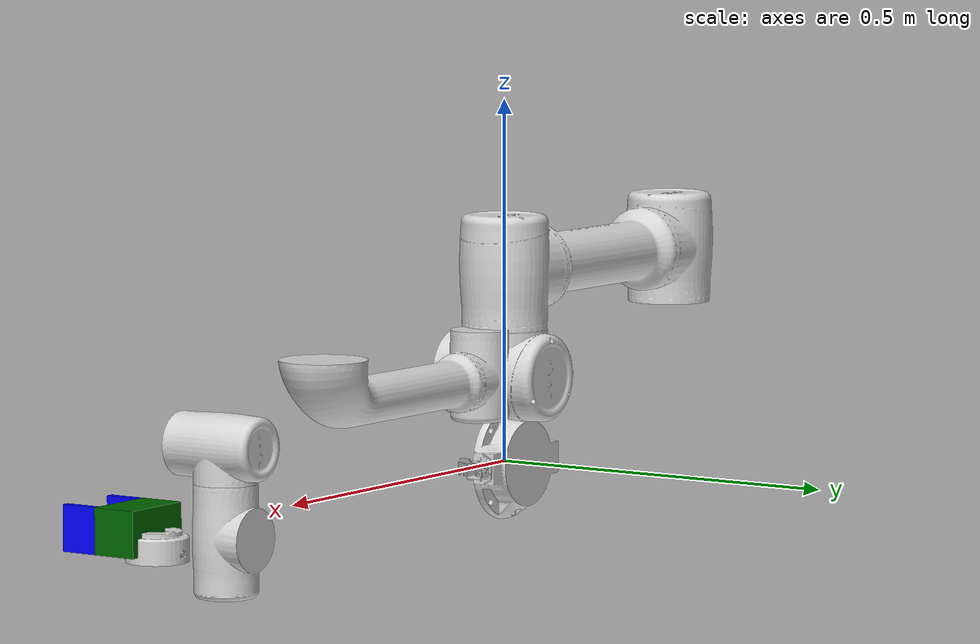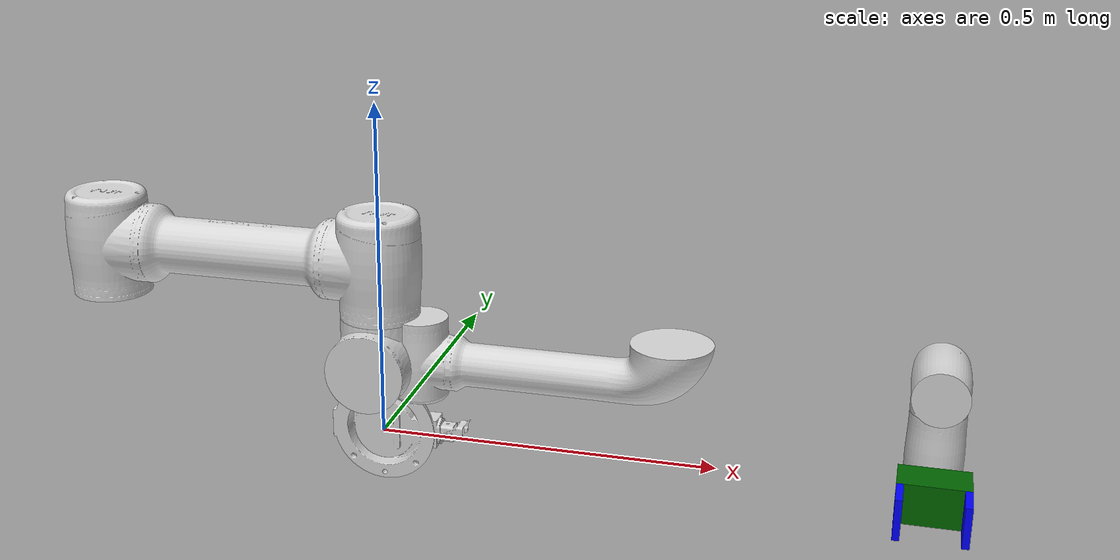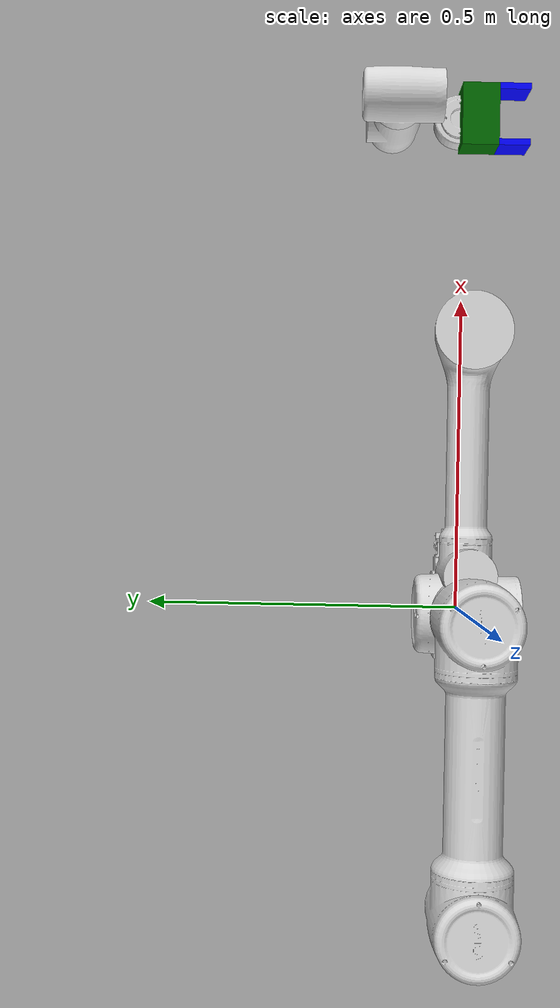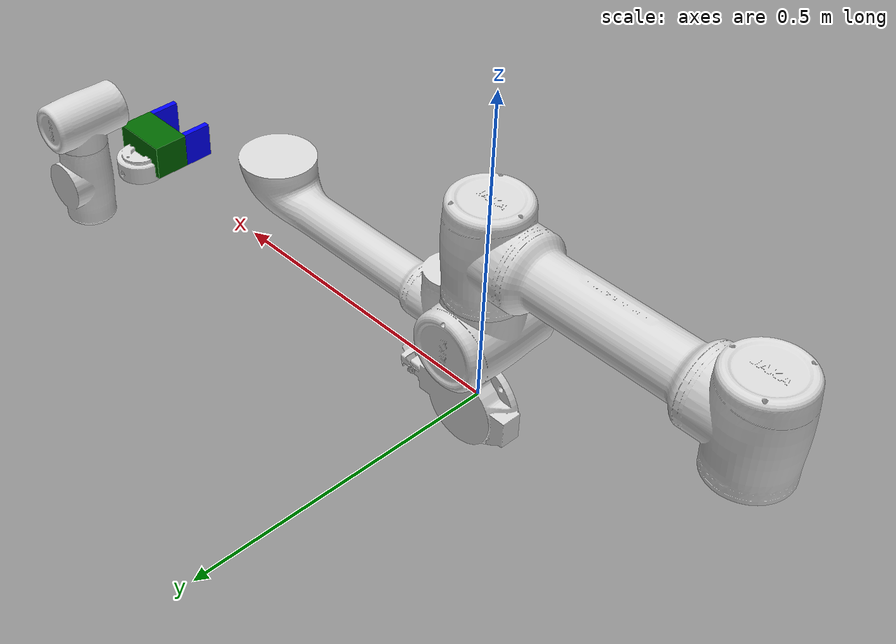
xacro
<?xml version="1.0"?>
<robot xmlns:xacro="http://www.ros.org/wiki/xacro" name="jaka_robot">
    <xacro:arg name="initial_positions_file" default="initial_positions.yaml" />
    <xacro:arg name="use_gazebo" default="false"/>
    <xacro:arg name="use_rviz_sim" default="false"/>

    <!-- Import jaka_robot urdf file -->
    <xacro:include filename="$(find jaka_description)/urdf/my_robot.urdf.xacro" />

    <!-- Import control_xacro -->
    <xacro:include filename="jaka_robot.ros2_control.xacro" />

     <xacro:jaka_zu5_ros2_control name="jaka_zu5_hardware" initial_positions_file="$(arg initial_positions_file)" use_gazebo="$(arg use_gazebo)" use_rviz_sim="$(arg use_rviz_sim)" />

</robot>

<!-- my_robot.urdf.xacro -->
<!-- Main robot URDF file that combines all robot components -->
<robot name="jaka_zu5" xmlns:xacro="http://www.ros.org/wiki/xacro">

  <xacro:property name="PI" value="3.14159274"/>

  <!-- Include robot arm definition -->
  <xacro:include filename="$(find jaka_description)/urdf/jaka_zu5.xacro" />

  <!-- Include gripper definition if needed -->
  <xacro:include filename="$(find jaka_description)/urdf/gripper.xacro" />

  <!-- 添加传动配置 -->
  <xacro:include filename="$(find jaka_description)/urdf/jaka_zu5.gazebo" />

  <!-- World link for ground truth -->
  <link name="world" />

  <!-- Fix robot arm to world coordinate system -->
  <joint name="world_joint" type="fixed">
    <parent link="world" />
    <child link="Link_0" />
    <origin xyz="0 0 0" rpy="0 0 0" />
  </joint>

</robot>

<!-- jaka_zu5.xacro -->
<robot name="jaka_zu5_arm" xmlns:xacro="http://www.ros.org/wiki/xacro">

  <!-- LINK -->

  <link
    name="Link_0">
    <inertial>
      <origin
        xyz="0.00096371 8.8222E-08 0.019555"
        rpy="0 0 0" />
      <mass
        value="4.0392" />
      <inertia
        ixx="0.0048763"
        ixy="-1.8056E-07"
        ixz="2.5196E-05"
        iyy="0.0068003"
        iyz="-1.7678E-09"
        izz="0.010618" />
    </inertial>
    <visual>
      <origin
        xyz="0 0 0"
        rpy="0 0 0" />
      <geometry>
        <mesh
          filename="package://jaka_description/meshes/jaka_zu5_meshes/Link_0.STL" />
      </geometry>
      <material
        name="">
        <color
          rgba="0.84706 0.84706 0.84706 1" />
      </material>
    </visual>
    <collision>
      <origin
        xyz="0 0 0"
        rpy="0 0 0" />
      <geometry>
        <mesh
          filename="package://jaka_description/meshes/jaka_zu5_meshes/Link_0.STL" />
      </geometry>
    </collision>
  </link>
  <link
    name="Link_1">
    <inertial>
      <origin
        xyz="-2.5186E-07 0.0033226 -0.001509"
        rpy="0 0 0" />
      <mass
        value="15.135" />
      <inertia
        ixx="0.044302"
        ixy="1.5349E-07"
        ixz="-6.1966E-07"
        iyy="0.043091"
        iyz="1.4326E-05"
        izz="0.030523" />
    </inertial>
    <visual>
      <origin
        xyz="0 0 0"
        rpy="0 0 0" />
      <geometry>
        <mesh
          filename="package://jaka_description/meshes/jaka_zu5_meshes/Link_1.STL" />
      </geometry>
      <material
        name="">
        <color
          rgba="0.84706 0.84706 0.84706 1" />
      </material>
    </visual>
    <collision>
      <origin
        xyz="0 0 0"
        rpy="0 0 0" />
      <geometry>
        <mesh
          filename="package://jaka_description/meshes/jaka_zu5_meshes/Link_1.STL" />
      </geometry>
    </collision>
  </link>

  <link
    name="Link_2">
    <inertial>
      <origin
        xyz="0.215 6.4325E-09 -0.14315"
        rpy="0 0 0" />
      <mass
        value="45.847" />
      <inertia
        ixx="0.10377"
        ixy="-1.3562E-06"
        ixz="2.544E-07"
        iyy="1.5964"
        iyz="2.1509E-08"
        izz="1.5689" />
    </inertial>
    <visual>
      <origin
        xyz="0 0 0"
        rpy="0 0 0" />
      <geometry>
        <mesh
          filename="package://jaka_description/meshes/jaka_zu5_meshes/Link_2.STL" />
      </geometry>
      <material
        name="">
        <color
          rgba="0.84706 0.84706 0.84706 1" />
      </material>
    </visual>
    <collision>
      <origin
        xyz="0 0 0"
        rpy="0 0 0" />
      <geometry>
        <mesh
          filename="package://jaka_description/meshes/jaka_zu5_meshes/Link_2.STL" />
      </geometry>
    </collision>
  </link>

  <link
    name="Link_3">
    <inertial>
      <origin
        xyz="0.19087 -1.1862E-05 -0.010587"
        rpy="0 0 0" />
      <mass
        value="18.069" />
      <inertia
        ixx="0.022066"
        ixy="-3.4554E-06"
        ixz="-0.022609"
        iyy="0.41632"
        iyz="1.1508E-08"
        izz="0.41071" />
    </inertial>
    <visual>
      <origin
        xyz="0 0 0"
        rpy="0 0 0" />
      <geometry>
        <mesh
          filename="package://jaka_description/meshes/jaka_zu5_meshes/Link_3.STL" />
      </geometry>
      <material
        name="">
        <color
          rgba="0.84706 0.84706 0.84706 1" />
      </material>
    </visual>
    <collision>
      <origin
        xyz="0 0 0"
        rpy="0 0 0" />
      <geometry>
        <mesh
          filename="package://jaka_description/meshes/jaka_zu5_meshes/Link_3.STL" />
      </geometry>
    </collision>
  </link>

  <link
    name="Link_4">
    <inertial>
      <origin
        xyz="-2.1345E-06 -0.0058004 0.0026717"
        rpy="0 0 0" />
      <mass
        value="5.5525" />
      <inertia
        ixx="0.0092564"
        ixy="1.1341E-07"
        ixz="-1.2578E-08"
        iyy="0.0052251"
        iyz="-8.3499E-05"
        izz="0.0089683" />
    </inertial>
    <visual>
      <origin
        xyz="0 0 0"
        rpy="0 0 0" />
      <geometry>
        <mesh
          filename="package://jaka_description/meshes/jaka_zu5_meshes/Link_4.STL" />
      </geometry>
      <material
        name="">
        <color
          rgba="0.84706 0.84706 0.84706 1" />
      </material>
    </visual>
    <collision>
      <origin
        xyz="0 0 0"
        rpy="0 0 0" />
      <geometry>
        <mesh
          filename="package://jaka_description/meshes/jaka_zu5_meshes/Link_4.STL" />
      </geometry>
    </collision>
  </link>

  <link
    name="Link_5">
    <inertial>
      <origin
        xyz="-2.0304E-06 -0.0028889 -0.0023424"
        rpy="0 0 0" />
      <mass
        value="6.3339" />
      <inertia
        ixx="0.012993"
        ixy="-1.0764E-07"
        ixz="5.8559E-09"
        iyy="0.0058454"
        iyz="4.5426E-05"
        izz="0.0127" />
    </inertial>
    <visual>
      <origin
        xyz="0 0 0"
        rpy="0 0 0" />
      <geometry>
        <mesh
          filename="package://jaka_description/meshes/jaka_zu5_meshes/Link_5.STL" />
      </geometry>
      <material
        name="">
        <color
          rgba="0.84706 0.84706 0.84706 1" />
      </material>
    </visual>
    <collision>
      <origin
        xyz="0 0 0"
        rpy="0 0 0" />
      <geometry>
        <mesh
          filename="package://jaka_description/meshes/jaka_zu5_meshes/Link_5.STL" />
      </geometry>
    </collision>
  </link>

  <link
    name="Link_6">
    <inertial>
      <origin
        xyz="2.7652E-05 -1.3485E-05 -0.021245"
        rpy="0 0 0" />
      <mass
        value="1.4169" />
      <inertia
        ixx="0.00071853"
        ixy="-6.9778E-07"
        ixz="-6.378E-07"
        iyy="0.00072375"
        iyz="8.3072E-07"
        izz="0.0011337" />
    </inertial>
    <visual>
      <origin
        xyz="0 0 0"
        rpy="0 0 0" />
      <geometry>
        <mesh
          filename="package://jaka_description/meshes/jaka_zu5_meshes/Link_6.STL" />
      </geometry>
      <material
        name="">
        <color
          rgba="0.84706 0.84706 0.84706 1" />
      </material>
    </visual>
    <collision>
      <origin
        xyz="0 0 0"
        rpy="0 0 0" />
      <geometry>
        <mesh
          filename="package://jaka_description/meshes/jaka_zu5_meshes/Link_6.STL" />
      </geometry>
    </collision>
  </link>

  <link name="tool_link">
    <!-- Virtual tool link; no geometry/intended for tool mounting -->
    <inertial>
      <origin xyz="0 0 0" rpy="0 0 0" />
      <mass value="0.0001" />
      <inertia ixx="1e-06" ixy="0" ixz="0" iyy="1e-06" iyz="0" izz="1e-06" />
    </inertial>
  </link>

  <!-- JOINT -->

  <joint
    name="joint_1"
    type="revolute">
    <origin
      xyz="0 0 0.12015"
      rpy="0 0 0" />
    <parent
      link="Link_0" />
    <child
      link="Link_1" />
    <axis
      xyz="0 0 1" />
    <limit
      lower="-6.28"
      upper="6.28"
      effort="2000"
      velocity="3.14" />
  </joint>

  <joint
    name="joint_2"
    type="revolute">
    <origin
      xyz="0 0 0"
      rpy="1.5708 0 0" />
    <parent
      link="Link_1" />
    <child
      link="Link_2" />
    <axis
      xyz="0 0 1" />
    <limit
      lower="-1.48"
      upper="4.62"
      effort="5000"
      velocity="3.14" />
  </joint>

  <joint
    name="joint_3"
    type="revolute">
    <origin
      xyz="0.43 0 0"
      rpy="0 0 0" />
    <parent
      link="Link_2" />
    <child
      link="Link_3" />
    <axis
      xyz="0 0 1" />
    <limit
      lower="-3.05"
      upper="3.05"
      effort="5000"
      velocity="3.14" />
  </joint>

  <joint
    name="joint_4"
    type="revolute">
    <origin
      xyz="0.3685 -1.185E-05 -0.114"
      rpy="0 0 0" />
    <parent
      link="Link_3" />
    <child
      link="Link_4" />
    <axis
      xyz="0 0 1" />
    <limit
      lower="-1.48"
      upper="4.62"
      effort="2000"
      velocity="3.14" />
  </joint>

  <joint
    name="joint_5"
    type="revolute">
    <origin
      xyz="0 -0.1135 0"
      rpy="1.5708 0 0" />
    <parent
      link="Link_4" />
    <child
      link="Link_5" />
    <axis
      xyz="0 0 1" />
    <limit
      lower="-6.28"
      upper="6.28"
      effort="3000"
      velocity="3.14" />
  </joint>

  <joint
    name="joint_6"
    type="revolute">
    <origin
      xyz="0 0.107 0"
      rpy="-1.5708 0 0" />
    <parent
      link="Link_5" />
    <child
      link="Link_6" />
    <axis
      xyz="0 0 1" />
    <limit
      lower="-6.28"
      upper="6.28"
      effort="1000"
      velocity="3.14" />
  </joint>

  <joint name="tool_joint" type="fixed">
    <origin xyz="0 0 0" rpy="0 0 0" />
    <parent link="Link_6" />
    <child link="tool_link" />
  </joint>

</robot>

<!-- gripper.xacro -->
<robot name="jaka_gripper" xmlns:xacro="http://www.ros.org/wiki/xacro">

    <material name="dark_green">
        <color rgba="0 0.4 0 1" />
    </material>
    <material name="blue">
        <color rgba="0 0 1 1" />
    </material>

    <link name="gripper_base_link">
        <inertial>
            <origin xyz="0 0 0.03" rpy="0 0 0" />
            <mass value="0.3" />
            <inertia
                ixx="0.00018"
                ixy="0.0"
                ixz="0.0"
                iyy="0.00034"
                iyz="0.0"
                izz="0.00034" />
        </inertial>
        <visual>
            <geometry>
                <box size="0.10 0.06 0.06" />
            </geometry>
            <origin xyz="0 0 0.03" rpy="0 0 0" />
            <material name="dark_green" />
        </visual>
        <collision>
            <geometry>
                <box size="0.10 0.06 0.06" />
            </geometry>
            <origin xyz="0 0 0.03" rpy="0 0 0" />
        </collision>
    </link>

    <link name="gripper_left_finger_link">
        <inertial>
            <origin xyz="0 0 0.025" rpy="0 0 0" />
            <mass value="0.03" />
            <inertia
                ixx="1.5e-05"
                ixy="0.0"
                ixz="0.0"
                iyy="6.5e-06"
                iyz="0.0"
                izz="9.3e-06" />
        </inertial>
        <visual>
            <geometry>
                <box size="0.01 0.06 0.05" />
            </geometry>
            <origin xyz="0 0 0.025" rpy="0 0 0" />
            <material name="blue" />
        </visual>
        <collision>
            <geometry>
                <box size="0.01 0.06 0.05" />
            </geometry>
            <origin xyz="0 0 0.025" rpy="0 0 0" />
        </collision>
    </link>

    <link name="gripper_right_finger_link">
        <inertial>
            <origin xyz="0 0 0.025" rpy="0 0 0" />
            <mass value="0.03" />
            <inertia
                ixx="1.5e-05"
                ixy="0.0"
                ixz="0.0"
                iyy="6.5e-06"
                iyz="0.0"
                izz="9.3e-06" />
        </inertial>
        <visual>
            <geometry>
                <box size="0.01 0.06 0.05" />
            </geometry>
            <origin xyz="0 0 0.025" rpy="0 0 0" />
            <material name="blue" />
        </visual>
        <collision>
            <geometry>
                <box size="0.01 0.06 0.05" />
            </geometry>
            <origin xyz="0 0 0.025" rpy="0 0 0" />
        </collision>
    </link>

    <!-- 抓取点的位置，用虚拟连杆占位 -->
        <!-- 没有视觉和碰撞，只有惯性属性 -->

    <joint name="gripper_left_finger_joint" type="prismatic">
        <parent link="gripper_base_link" />
        <child link="gripper_left_finger_link" />
        <origin xyz="-0.045 0 0.06" rpy="0 0 0" />
        <axis xyz="1 0 0" />
        <limit effort="1000.0" velocity="1.0" lower="0.0" upper="0.04" />
    </joint>

    <joint name="gripper_right_finger_joint" type="prismatic">
        <parent link="gripper_base_link" />
        <child link="gripper_right_finger_link" />
        <origin xyz="0.045 0 0.06" rpy="0 0 0" />
        <axis xyz="1 0 0" />
        <limit effort="1000.0" velocity="1.0" lower="-0.04" upper="0.0" />
    </joint>

    <!-- 抓取点 -->

  <!-- Joint to connect gripper to robot arm -->
    <joint name="gripper_base_joint" type="fixed">
        <parent link="tool_link" />
        <child link="gripper_base_link" />
        <origin xyz="0 0 0" rpy="0 0 0" />
    </joint>

</robot>
